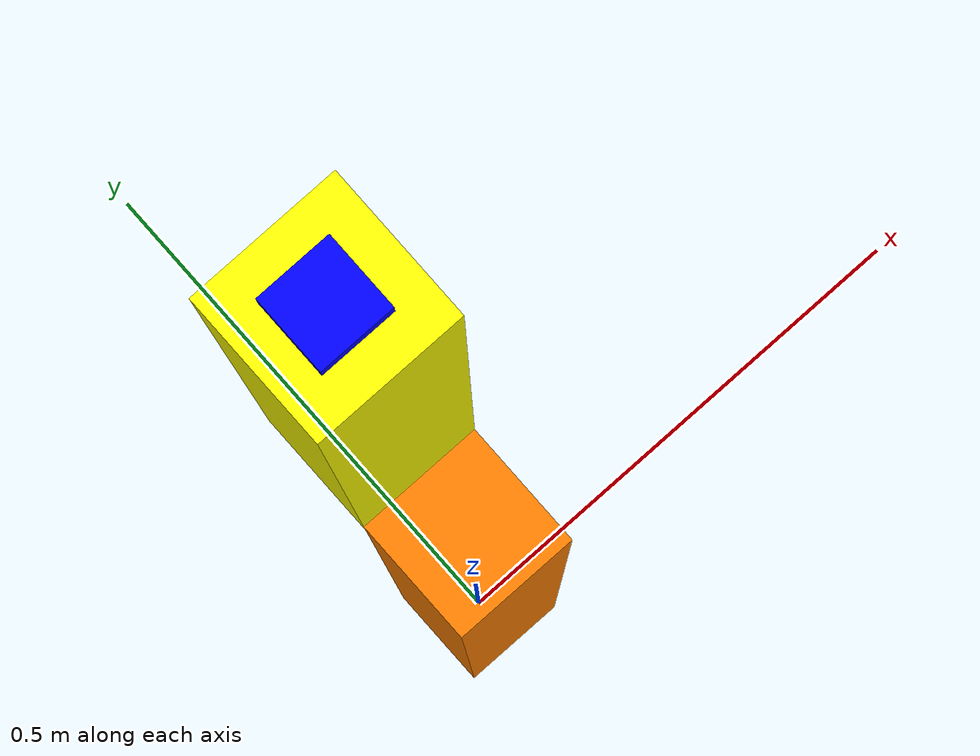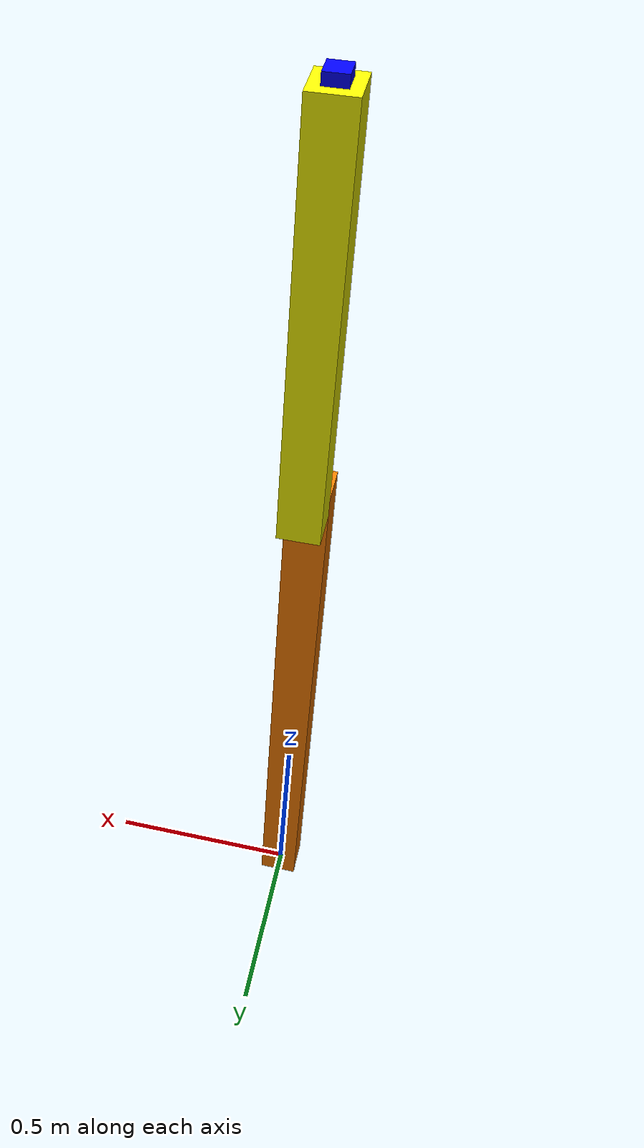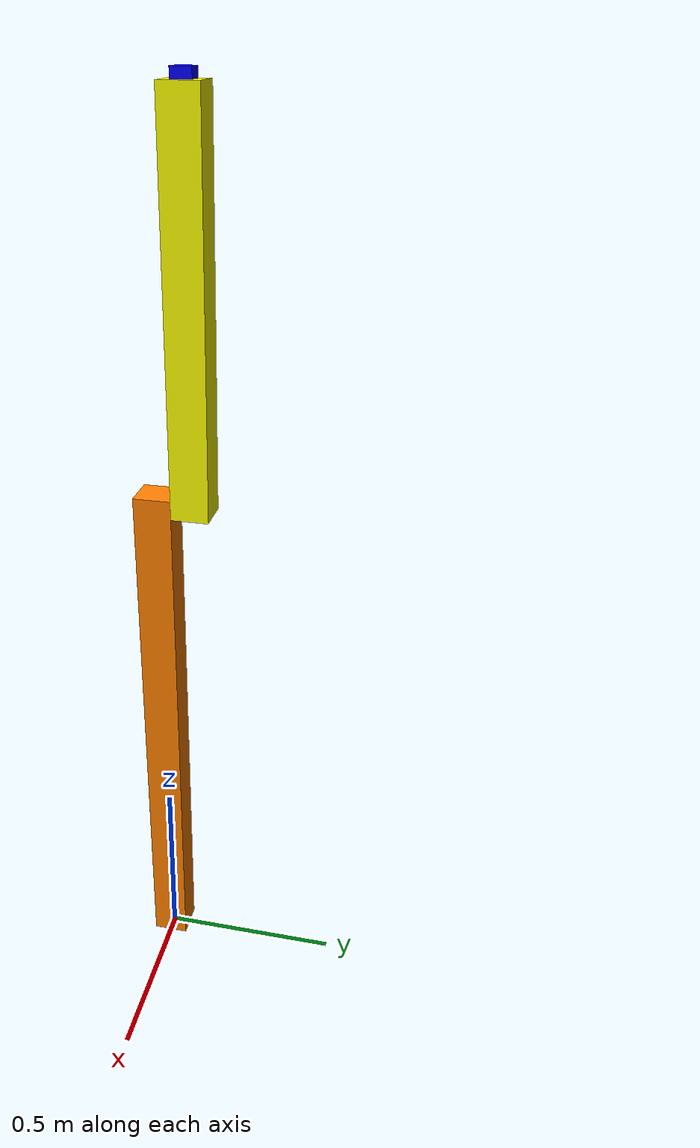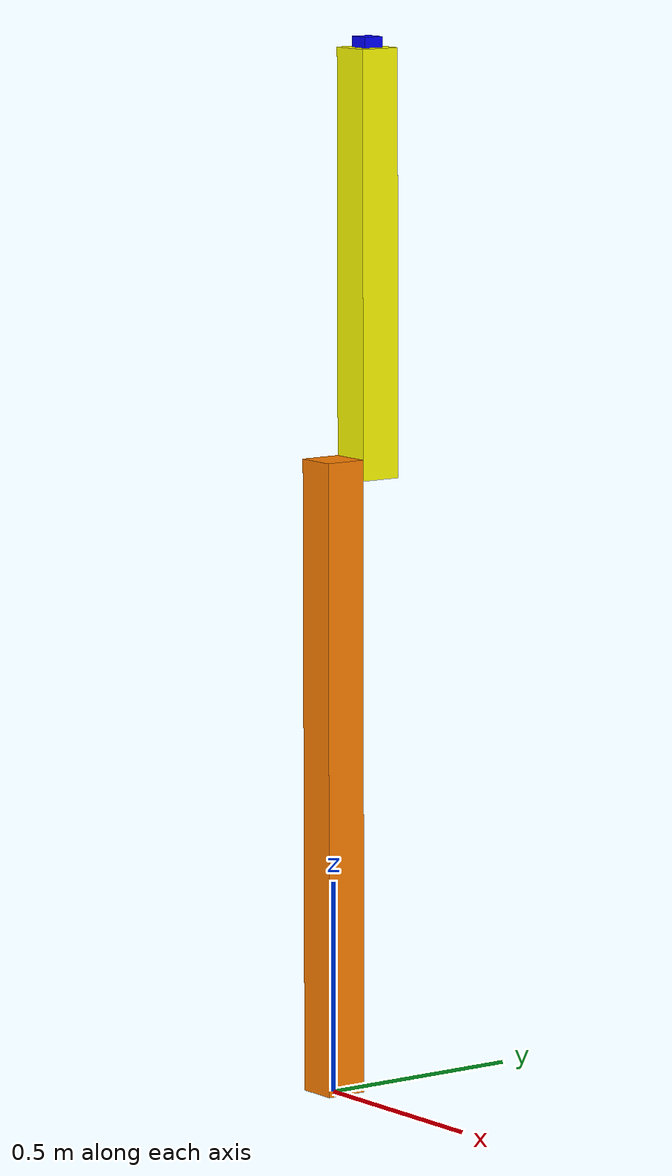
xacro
<?xml version="1.0"?>
<robot xmlns:xacro="http://www.ros.org/wiki/xacro" name="rrbot_guardiano">

  <!-- Proprietà generali del robot -->
  <xacro:property name="mass" value="1.0" />
  <xacro:property name="width" value="0.1" />
  <xacro:property name="height1" value="1.5" /> <!-- Base fissa -->
  <xacro:property name="height2" value="1.0" /> <!-- Braccio mobile -->
  <xacro:property name="axel_offset" value="0.05" />

  <!-- Link Mondo / Base di appoggio -->
  <link name="world"/>

  <joint name="world_fixed" type="fixed">
    <parent link="world"/>
    <child link="base_static_link"/>
    <origin xyz="0 0 0" rpy="0 0 0"/>
  </joint>

  <!-- PARTE 1: La struttura FISSA (il supporto immobile) -->
  <link name="base_static_link">
    <collision>
      <origin xyz="0 0 ${height1/2}" rpy="0 0 0"/>
      <geometry>
        <box size="${width} ${width} ${height1}"/>
      </geometry>
    </collision>
    <visual>
      <origin xyz="0 0 ${height1/2}" rpy="0 0 0"/>
      <geometry>
        <box size="${width} ${width} ${height1}"/>
      </geometry>
      <material name="orange">
        <color rgba="1.0 0.5 0.0 1.0"/>
      </material>
    </visual>
    <inertial>
      <origin xyz="0 0 ${height1/2}" rpy="0 0 0"/>
      <mass value="${mass}"/>
      <inertia ixx="0.1" ixy="0.0" ixz="0.0" iyy="0.1" iyz="0.0" izz="0.1"/>
    </inertial>
  </link>

  <!-- Giunto che unisce la parte fissa a quella mobile -->
  <joint name="arm_joint" type="continuous">
    <parent link="base_static_link"/>
    <child link="arm_moving_link"/>
    <origin xyz="0 ${width} ${height1 - axel_offset}" rpy="0 0 0"/>
    <axis xyz="0 1 0"/>
    <dynamics damping="0.7"/>
    <limit effort="100" velocity="1.0"/>
  </joint>

  <!-- PARTE 2: La struttura MOBILE (il braccio che si sposta) -->
  <link name="arm_moving_link">
    <collision>
      <origin xyz="0 0 ${height2/2}" rpy="0 0 0"/>
      <geometry>
        <box size="${width} ${width} ${height2}"/>
      </geometry>
    </collision>
    <visual>
      <origin xyz="0 0 ${height2/2}" rpy="0 0 0"/>
      <geometry>
        <box size="${width} ${width} ${height2}"/>
      </geometry>
      <material name="yellow">
        <color rgba="1.0 1.0 0.0 1.0"/>
      </material>
    </visual>
    <inertial>
      <origin xyz="0 0 ${height2/2}" rpy="0 0 0"/>
      <mass value="${mass}"/>
      <inertia ixx="0.1" ixy="0.0" ixz="0.0" iyy="0.1" iyz="0.0" izz="0.1"/>
    </inertial>
  </link>

  <!-- Giunto per fissare il sensore in cima al braccio mobile -->
  <joint name="sensor_joint" type="fixed">
    <origin xyz="0 0 ${height2}" rpy="0 0 0"/>
    <parent link="arm_moving_link"/>
    <child link="sensor_link"/>
  </joint>

  <!-- PARTE 3: Il sensore (Ray Sensor / Laser) -->
  <link name="sensor_link">
    <visual>
      <geometry>
        <box size="0.05 0.05 0.05"/>
      </geometry>
      <material name="blue">
        <color rgba="0.0 0.0 1.0 1.0"/>
      </material>
    </visual>
    <collision>
      <geometry>
        <box size="0.05 0.05 0.05"/>
      </geometry>
    </collision>
    <inertial>
      <mass value="0.1"/>
      <inertia ixx="0.01" ixy="0.0" ixz="0.0" iyy="0.01" iyz="0.0" izz="0.01"/>
    </inertial>
  </link>

  <!-- Plugin Gazebo per il sensore ray che spara sul topic /scan -->
  <gazebo reference="sensor_link">
    <sensor name="ray_sensor" type="ray">
      <pose>0 0 0 0 0 0</pose>
      <visualize>true</visualize>
      <update_rate>50</update_rate>
      <ray>
        <scan>
          <horizontal>
            <samples>360</samples>
            <resolution>1</resolution>
            <min_angle>-1.57</min_angle>
            <max_angle>1.57</max_angle>
          </horizontal>
        </scan>
        <range>
          <min>0.1</min>
          <max>10.0</max>
          <resolution>0.01</resolution>
        </range>
      </ray>
      <plugin filename="libgazebo_ros_ray_sensor.so" name="gazebo_ros_ray_sensor_controller">
        <ros>
          <namespace>/</namespace>
          <remapping>~/out:=scan</remapping>
        </ros>
        <output_type>sensor_msgs/LaserScan</output_type>
      </plugin>
    </sensor>
  </gazebo>

</robot>
